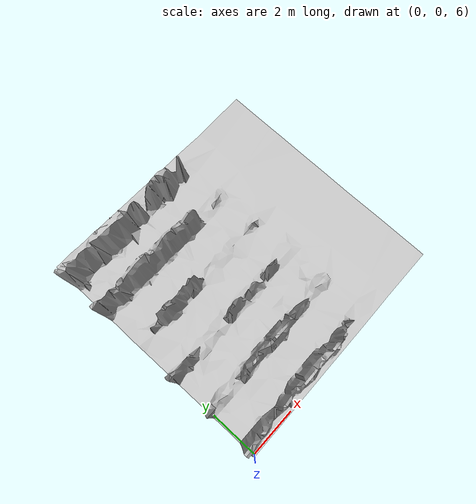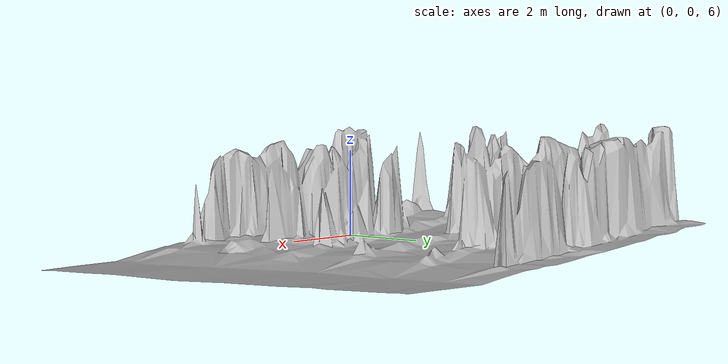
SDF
<?xml version="1.0" ?>
<sdf version="1.10">
    <model name="map_150_80">
        <link name="map_150_80_link">
            <visual name="map_150_80_visual">
                <geometry>
                    <mesh>
                        <uri>meshes/visual/map_150_80.obj</uri>
                    </mesh>
                </geometry>
            </visual>
            <collision name="map_150_80_collision">
                <surface>
                    <friction>
                        <ode>
                            <mu>2.316343837943928</mu>
                            <mu2>2.316343837943928</mu2>
                        </ode>
                        <bullet>
                            <friction>2.316343837943928</friction>
                            <friction2>2.316343837943928</friction2>
                        </bullet>
                    </friction>
                </surface>
                <geometry>
                    <mesh>
                        <uri>meshes/visual/map_150_80.obj</uri>
                    </mesh>
                </geometry>
            </collision>
        </link>
        <static>True</static>
    </model>
</sdf>
